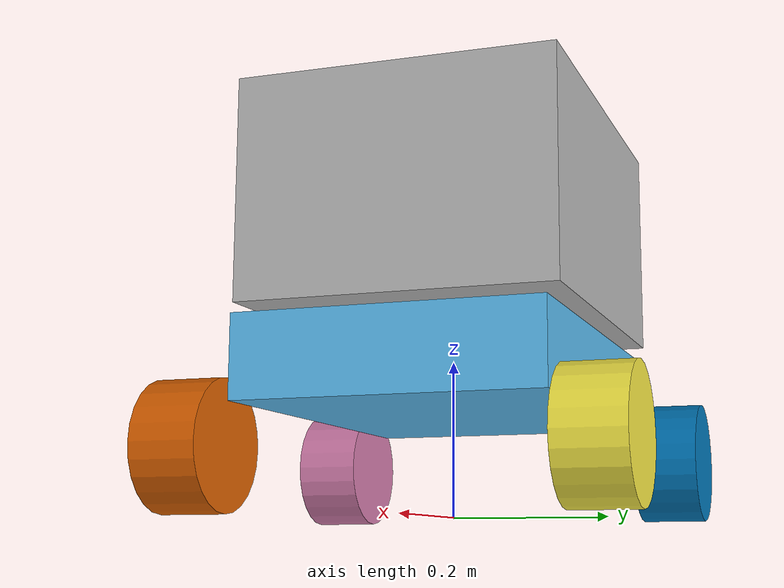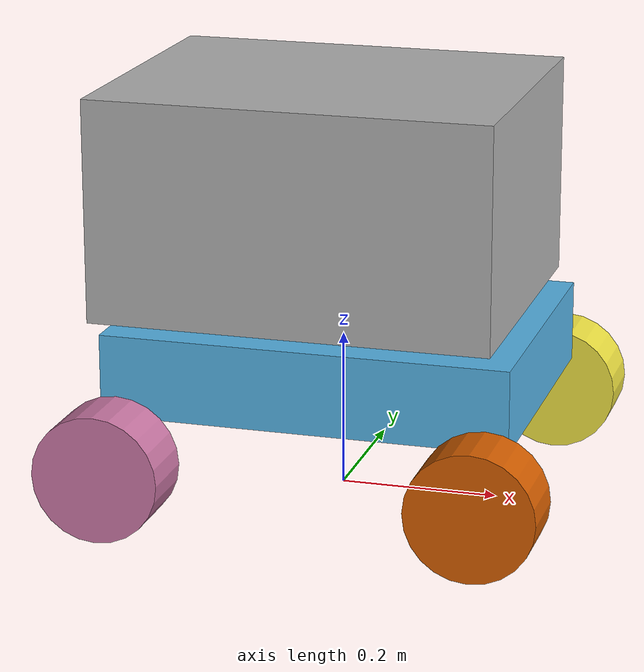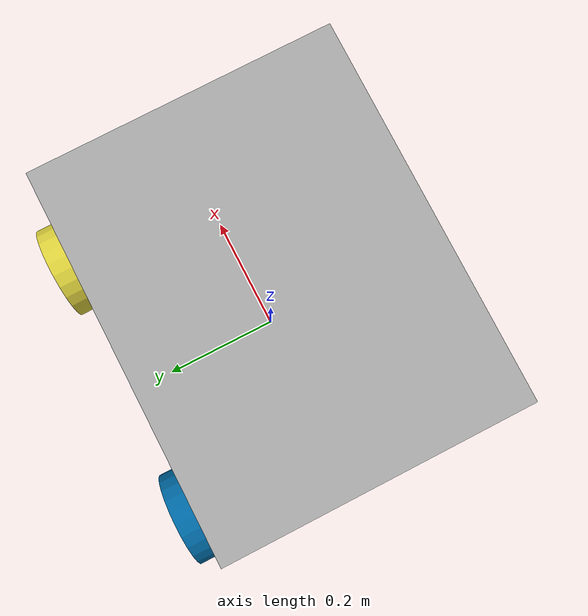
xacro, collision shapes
<?xml version="1.0"?>
<robot xmlns:xacro="http://www.ros.org/wiki/xacro" name="scout_mini_rdk">

  <xacro:arg name="enable_cameras" default="true"/>

  <xacro:property name="PI" value="3.1415926535897931"/>

  <!-- Vendor mesh frame -> ours -->
  <xacro:property name="upper_z_offset" value="0.053"/>
  <!-- SolidWorks mass for the bare stack; raise it to feel the PC and battery -->
  <xacro:property name="upper_mass" value="2.4135"/>
  <!-- Helios: 900 samples = 0.4 deg, 1800 = 0.2 deg. Drop to 450 for speed. -->
  <xacro:property name="lidar_h_samples" value="900"/>

  <xacro:property name="wheel_radius" value="0.08"/>
  <xacro:property name="wheel_width" value="0.0837"/>
  <xacro:property name="wheel_x" value="0.2319755"/>
  <xacro:property name="wheel_y" value="0.245"/>
  <xacro:property name="wheel_z" value="-0.100998"/>
  <xacro:property name="base_height" value="${wheel_radius - wheel_z}"/>

  <!-- Ground projection is the TF root; keep the original chassis coordinates. -->
  <link name="base_footprint"/>
  <joint name="base_footprint_joint" type="fixed">
    <parent link="base_footprint"/>
    <child link="base_link"/>
    <origin xyz="0 0 ${base_height}" rpy="0 0 0"/>
  </joint>

  <!-- ===================================================== chassis -->
  <link name="base_link">
    <visual>
      <origin xyz="0 0 0" rpy="${PI/2} 0 -${PI/2}"/>
      <geometry>
        <mesh filename="package://scout_mini_sim/meshes/body.dae"/>
      </geometry>
    </visual>
    <collision>
      <origin xyz="0 0 0" rpy="0 0 0"/>
      <geometry>
        <box size="0.514618 0.3816 0.10357"/>
      </geometry>
    </collision>
  </link>
  <gazebo reference="base_link">
    <visual>
      <visibility_flags>1</visibility_flags>
    </visual>
  </gazebo>

  <link name="inertial_link">
    <inertial>
      <mass value="17"/>
      <!-- datasheet CoM: 160 mm above the ground, i.e. 21 mm below base_link -->
      <origin xyz="0 0 -0.021" rpy="0 0 0"/>
      <inertia ixx="0.221489" ixy="0" ixz="0" iyy="0.390374" iyz="0" izz="0.581471"/>
    </inertial>
  </link>
  <joint name="inertial_joint" type="fixed">
    <parent link="base_link"/>
    <child link="inertial_link"/>
  </joint>

  <xacro:macro name="wheel" params="name xyz visual_xyz visual_rpy">
    <joint name="${name}_wheel_joint" type="continuous">
      <parent link="base_link"/>
      <child link="${name}_wheel_link"/>
      <origin xyz="${xyz}" rpy="0 0 0"/>
      <axis xyz="0 1 0"/>
    </joint>
    <link name="${name}_wheel_link">
      <visual>
        <origin xyz="${visual_xyz}" rpy="${visual_rpy}"/>
        <geometry>
          <mesh filename="package://scout_mini_sim/meshes/wheel.dae"/>
        </geometry>
      </visual>
      <collision>
        <!-- cylinder, not the wheel mesh: a mesh wheel on a mesh floor stops
             the robot from moving at all -->
        <origin xyz="0 0 0" rpy="${visual_rpy}"/>
        <geometry>
          <cylinder radius="${wheel_radius}" length="${wheel_width}"/>
        </geometry>
      </collision>
      <inertial>
        <mass value="1.5"/>
        <inertia ixx="0.003276" ixy="0" ixz="0" iyy="0.004800" iyz="0" izz="0.003276"/>
      </inertial>
    </link>
    <gazebo reference="${name}_wheel_link">
      <visual>
        <visibility_flags>1</visibility_flags>
      </visual>
    </gazebo>
  </xacro:macro>

  <xacro:wheel name="front_left" xyz="${wheel_x} ${wheel_y} ${wheel_z}"
    visual_xyz="0 -0.0367485 0" visual_rpy="-${PI/2} 0 0"/>
  <xacro:wheel name="rear_left" xyz="-${wheel_x} ${wheel_y} ${wheel_z}"
    visual_xyz="0 -0.0367485 0" visual_rpy="-${PI/2} 0 0"/>
  <xacro:wheel name="front_right" xyz="${wheel_x} -${wheel_y} ${wheel_z}"
    visual_xyz="0 0.0367485 0" visual_rpy="${PI/2} 0 0"/>
  <xacro:wheel name="rear_right" xyz="-${wheel_x} -${wheel_y} ${wheel_z}"
    visual_xyz="0 0.0367485 0" visual_rpy="${PI/2} 0 0"/>

  <!-- ================================================ R&D Kit stack -->
  <link name="rdk_upper_link">
    <visual>
      <!-- SolidWorks re-export moved the mesh origin to the model corner.
           These offsets restore the old frame: x_min -0.2482, y centred on 0. -->
      <origin xyz="-0.2481905 -0.2772031 0" rpy="0 0 0"/>
      <geometry>
        <mesh filename="package://scout_mini_sim/meshes/upper.dae"/>
      </geometry>
    </visual>
    <!-- Simplified body collision; RTK antenna collision boxes were removed. -->
    <collision>
      <origin xyz="-0.017 0 0.1555" rpy="0 0 0"/>
      <geometry>
        <box size="0.504 0.400 0.279"/>
      </geometry>
    </collision>

    <inertial>
      <origin xyz="-0.019065 0.0082257 0.11466" rpy="0 0 0"/>
      <mass value="${upper_mass}"/>
      <inertia ixx="0.0088463" ixy="0.000020356" ixz="-0.00047464"
               iyy="0.0066478" iyz="-0.0000069288" izz="0.01219"/>
    </inertial>
  </link>
  <gazebo reference="rdk_upper_link">
    <visual>
      <visibility_flags>1</visibility_flags>
    </visual>
  </gazebo>
  <joint name="rdk_upper_joint" type="fixed">
    <parent link="base_link"/>
    <child link="rdk_upper_link"/>
    <origin xyz="0 0 ${upper_z_offset}" rpy="0 0 0"/>
  </joint>

  <!-- ==================================================== sensors
       Poses are measured off the vendor mesh (+/-20 mm), not tape-measured. -->
  <link name="lidar_3d_link"/>
  <joint name="lidar_3d_joint" type="fixed">
    <parent link="base_link"/>
    <child link="lidar_3d_link"/>
    <origin xyz="0.05 0 0.30" rpy="0 0 0"/>
  </joint>
  <gazebo reference="lidar_3d_link">
    <sensor name="helios_16p" type="gpu_lidar">
      <!-- one gpu_lidar publishes PointCloud2 to /scout/lidar/points and
           LaserScan to /scout/lidar (remapped to /scan for Nav2) -->
      <topic>/scout/lidar</topic>
      <ignition_frame_id>lidar_3d_link</ignition_frame_id>
      <always_on>true</always_on>
      <update_rate>10</update_rate>
      <lidar>
        <!-- Exclude robot visuals tagged with visibility bit 0 while retaining
             the world meshes that keep their default all-bits visibility. -->
        <visibility_mask>4294967294</visibility_mask>
        <scan>
          <horizontal>
            <samples>${lidar_h_samples}</samples>
            <resolution>1</resolution>
            <min_angle>-3.141592653589793</min_angle>
            <max_angle>3.141592653589793</max_angle>
          </horizontal>
          <vertical>
            <samples>16</samples>
            <resolution>1</resolution>
            <min_angle>-0.2617993877991494</min_angle>
            <max_angle>0.2617993877991494</max_angle>
          </vertical>
        </scan>
        <range>
          <min>0.2</min>
          <max>80.0</max>
          <resolution>0.01</resolution>
        </range>
        <noise>
          <type>gaussian</type>
          <mean>0.0</mean>
          <stddev>0.01</stddev>
        </noise>
      </lidar>
    </sensor>
  </gazebo>

  <link name="camera_link"/>
  <joint name="camera_joint" type="fixed">
    <parent link="base_link"/>
    <child link="camera_link"/>
    <origin xyz="0.2222739 -0.0044991 0.0855002" rpy="0 0 0"/>
  </joint>
  <link name="camera_depth_frame"/>
  <joint name="camera_depth_joint" type="fixed">
    <parent link="camera_link"/>
    <child link="camera_depth_frame"/>
  </joint>
  <link name="camera_depth_optical_frame"/>
  <joint name="camera_depth_optical_joint" type="fixed">
    <parent link="camera_depth_frame"/>
    <child link="camera_depth_optical_frame"/>
    <origin xyz="0 0 0" rpy="${-PI/2} 0 ${-PI/2}"/>
  </joint>
  <link name="camera_color_frame"/>
  <joint name="camera_color_joint" type="fixed">
    <parent link="camera_link"/>
    <child link="camera_color_frame"/>
    <origin xyz="0 0.015 0" rpy="0 0 0"/>
  </joint>
  <link name="camera_color_optical_frame"/>
  <joint name="camera_color_optical_joint" type="fixed">
    <parent link="camera_color_frame"/>
    <child link="camera_color_optical_frame"/>
    <origin xyz="0 0 0" rpy="${-PI/2} 0 ${-PI/2}"/>
  </joint>
  <xacro:if value="$(arg enable_cameras)">
  <gazebo reference="camera_color_frame">
    <sensor name="d435_color" type="camera">
      <topic>/camera/color/image</topic>
      <ignition_frame_id>camera_color_optical_frame</ignition_frame_id>
      <always_on>true</always_on>
      <update_rate>30</update_rate>
      <camera>
        <horizontal_fov>1.2113</horizontal_fov>
        <image>
          <width>1920</width>
          <height>1080</height>
          <format>R8G8B8</format>
        </image>
        <clip>
          <near>0.2</near>
          <far>100.0</far>
        </clip>
      </camera>
    </sensor>
  </gazebo>

  <gazebo reference="camera_depth_frame">
    <sensor name="d435_depth" type="depth_camera">
      <topic>/camera/depth/image</topic>
      <ignition_frame_id>camera_depth_optical_frame</ignition_frame_id>
      <always_on>true</always_on>
      <update_rate>30</update_rate>
      <camera>
        <horizontal_fov>1.4870</horizontal_fov>
        <image>
          <width>1280</width>
          <height>720</height>
          <format>R_FLOAT32</format>
        </image>
        <clip>
          <near>0.2</near>
          <far>10.0</far>
        </clip>
      </camera>
    </sensor>
  </gazebo>
  </xacro:if>

  <link name="imu_link"/>
  <joint name="imu_joint" type="fixed">
    <parent link="base_link"/>
    <child link="imu_link"/>
  </joint>
  <gazebo reference="imu_link">
    <sensor name="imu" type="imu">
      <topic>/imu/data</topic>
      <ignition_frame_id>imu_link</ignition_frame_id>
      <always_on>true</always_on>
      <!-- FAST-LIO recommends >= 200 Hz IMU; must divide the world's physics rate. -->
      <update_rate>200</update_rate>
    </sensor>
  </gazebo>

  <!-- =================================================== drive -->
  <gazebo>
    <plugin filename="ignition-gazebo-diff-drive-system"
            name="ignition::gazebo::systems::DiffDrive">
      <left_joint>front_left_wheel_joint</left_joint>
      <left_joint>rear_left_wheel_joint</left_joint>
      <right_joint>front_right_wheel_joint</right_joint>
      <right_joint>rear_right_wheel_joint</right_joint>
      <wheel_separation>0.90</wheel_separation>
      <wheel_radius>0.08</wheel_radius>
      <topic>/cmd_vel</topic>
      <odom_topic>/odom</odom_topic>
      <tf_topic>/tf</tf_topic>
      <odom_publish_frequency>50</odom_publish_frequency>
      <frame_id>odom</frame_id>
      <child_frame_id>base_footprint</child_frame_id>
      <max_linear_velocity>3.0</max_linear_velocity>
      <max_angular_velocity>0.40</max_angular_velocity>
    </plugin>
    <plugin filename="ignition-gazebo-joint-state-publisher-system"
            name="ignition::gazebo::systems::JointStatePublisher">
      <topic>/joint_states</topic>
      <joint_name>front_left_wheel_joint</joint_name>
      <joint_name>rear_left_wheel_joint</joint_name>
      <joint_name>front_right_wheel_joint</joint_name>
      <joint_name>rear_right_wheel_joint</joint_name>
    </plugin>
  </gazebo>

</robot>
